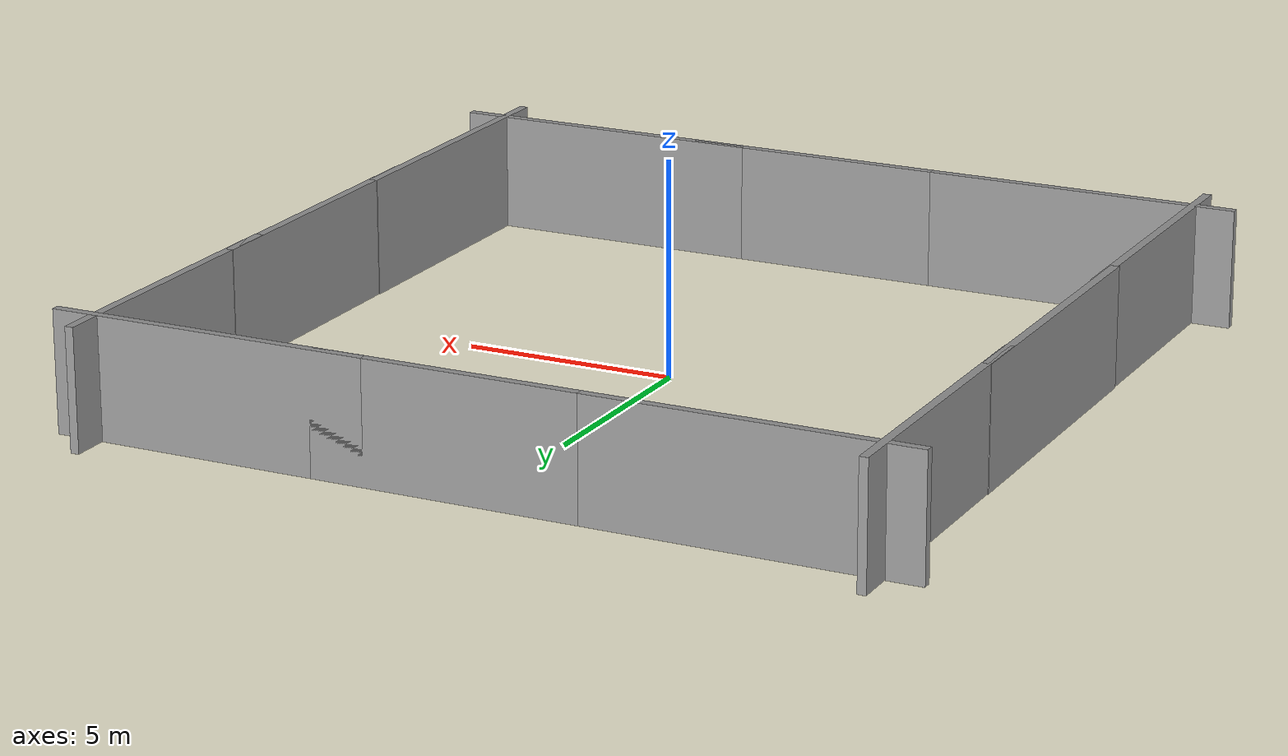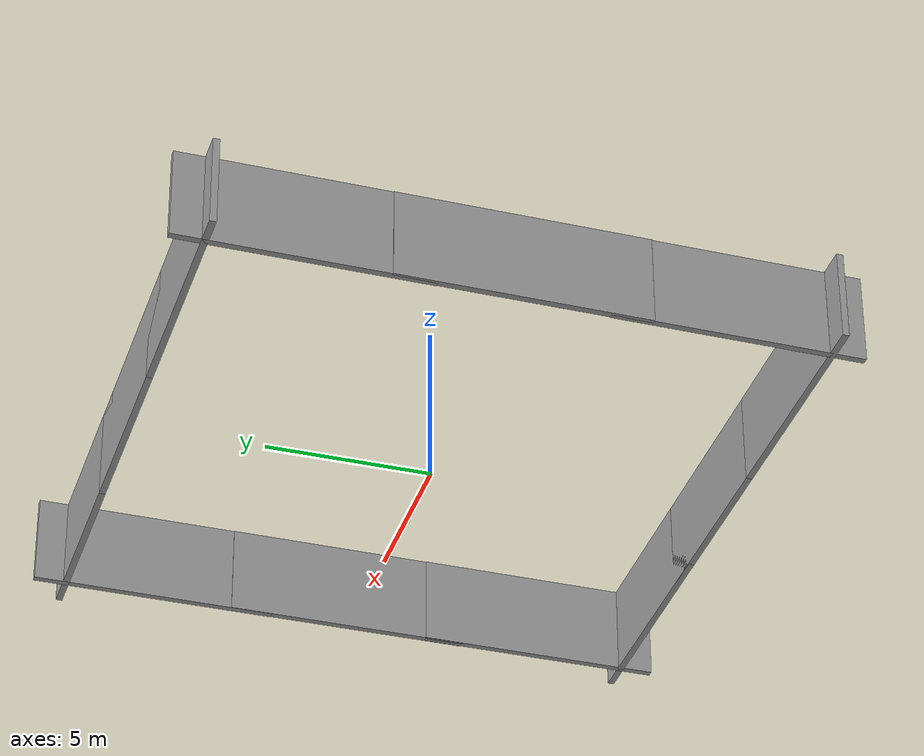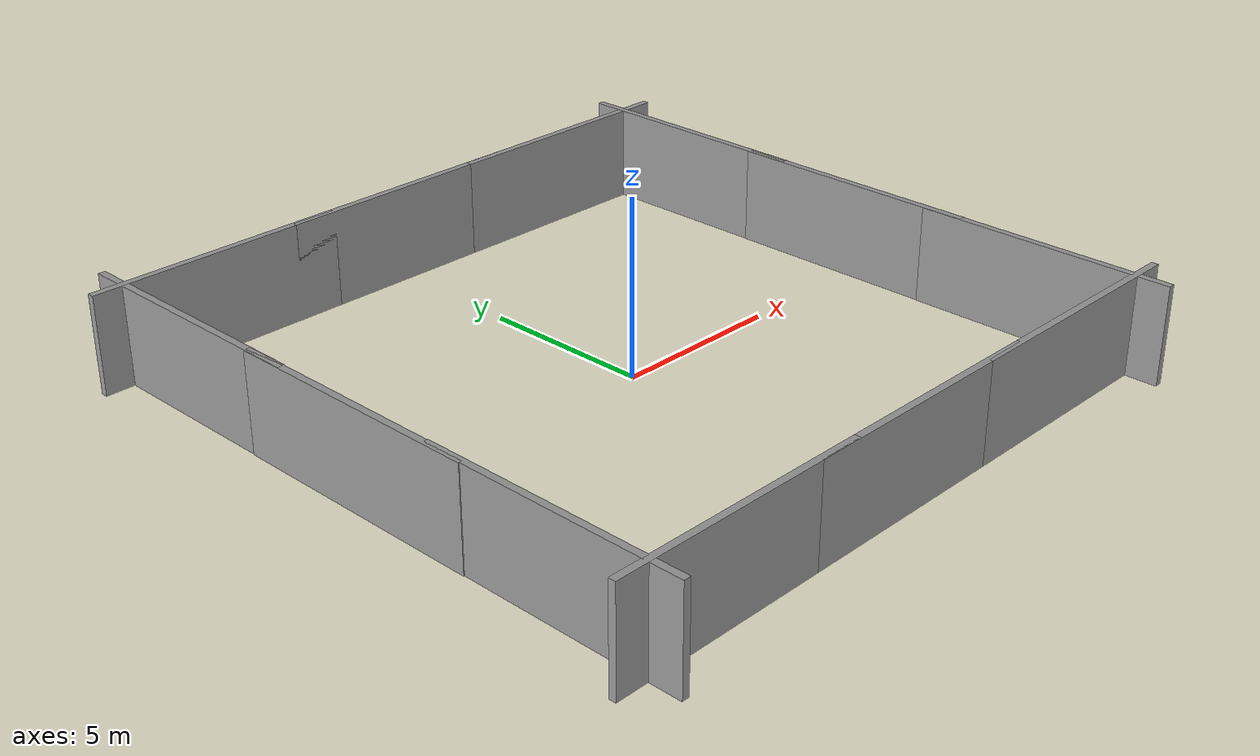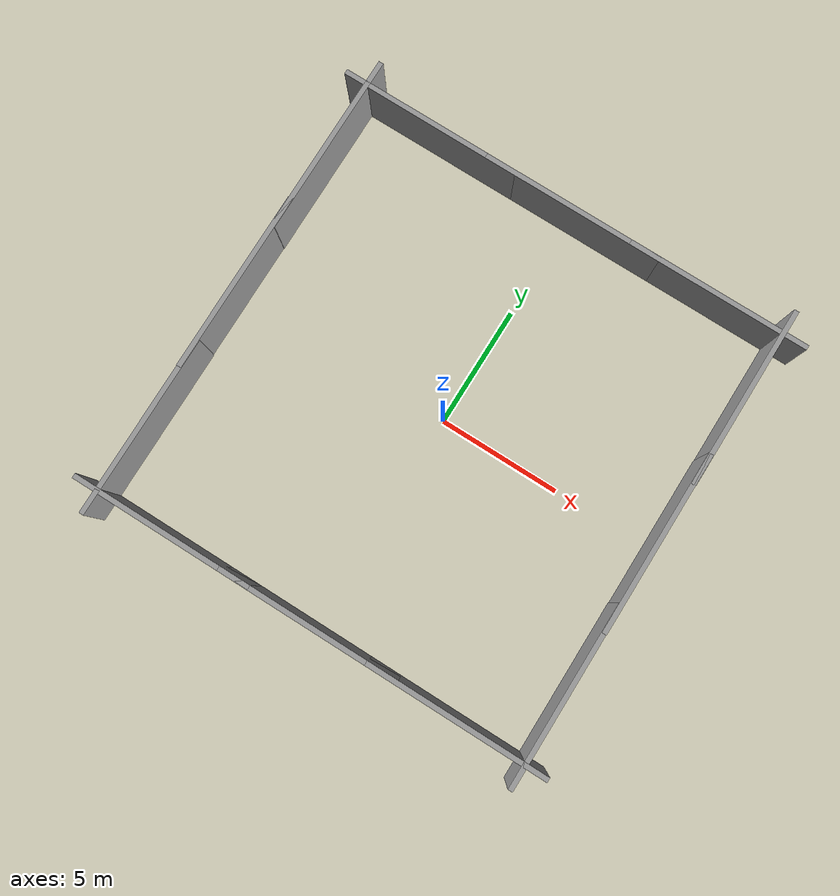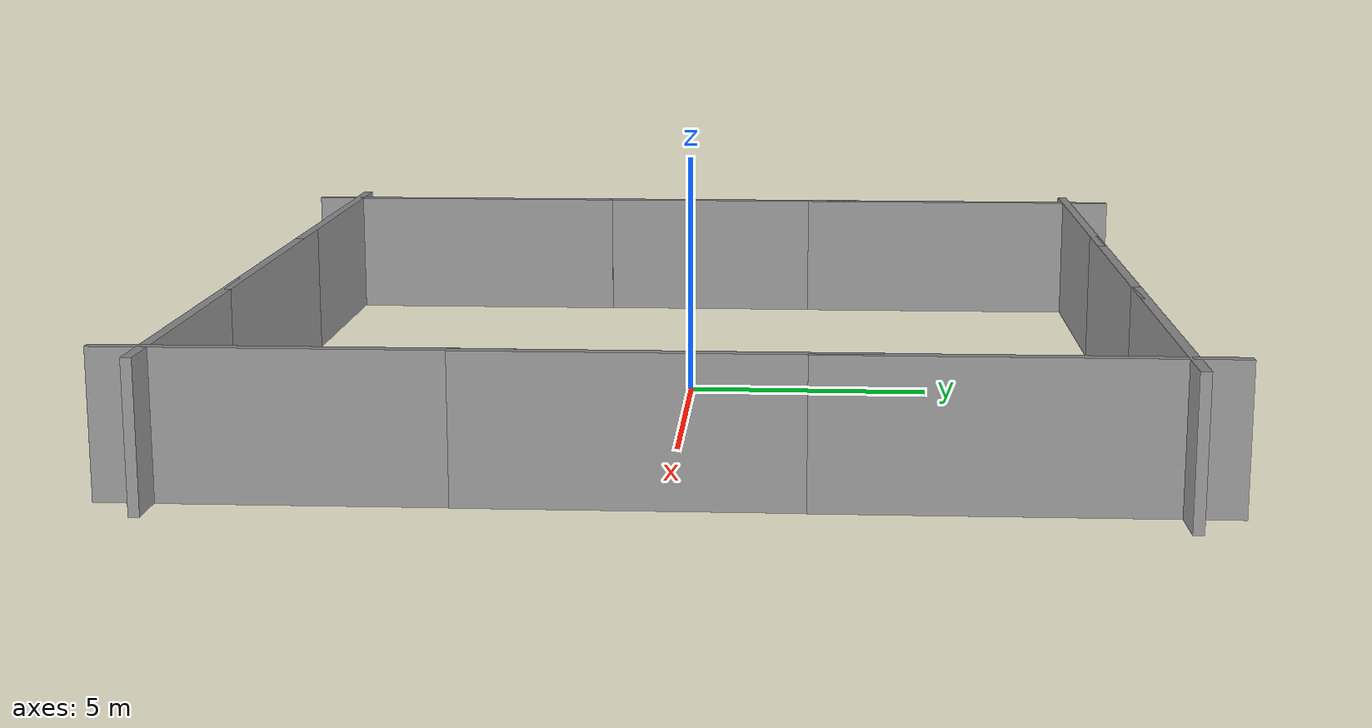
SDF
<?xml version='1.0'?>
<sdf version='1.6'>
  <model name='stonewall'>
    <model name='grey_wall'>
      <static>1</static>
      <link name='link'>
        <pose frame=''>0 0 1.4 0 -0 0</pose>
        <collision name='collision'>
          <geometry>
            <box>
              <size>7.5 0.2 2.8</size>
            </box>
          </geometry>
        </collision>
        <visual name='visual'>
          <cast_shadows>0</cast_shadows>
          <geometry>
            <box>
              <size>7.5 0.2 2.8</size>
            </box>
          </geometry>
          <material>
            <script>
              <uri>model://grey_wall/materials/scripts</uri>
              <uri>model://grey_wall/materials/textures</uri>
              <name>vrc/grey_wall</name>
            </script>
          </material>
        </visual>
      </link>
      <pose frame=''>-6.21549 -9.00567 0 0 -0 0</pose>
    </model>
    <model name='grey_wall_0'>
      <static>1</static>
      <link name='link'>
        <pose frame=''>0 0 1.4 0 -0 0</pose>
        <collision name='collision'>
          <geometry>
            <box>
              <size>7.5 0.2 2.8</size>
            </box>
          </geometry>
        </collision>
        <visual name='visual'>
          <cast_shadows>0</cast_shadows>
          <geometry>
            <box>
              <size>7.5 0.2 2.8</size>
            </box>
          </geometry>
          <material>
            <script>
              <uri>model://grey_wall/materials/scripts</uri>
              <uri>model://grey_wall/materials/textures</uri>
              <name>vrc/grey_wall</name>
            </script>
          </material>
        </visual>
      </link>
      <pose frame=''>-8.96556 -6.24851 0 0 -0 1.57372</pose>
    </model>
    <model name='grey_wall_0_clone'>
      <static>1</static>
      <link name='link'>
        <pose frame=''>0 0 1.4 0 -0 0</pose>
        <collision name='collision'>
          <geometry>
            <box>
              <size>7.5 0.2 2.8</size>
            </box>
          </geometry>
        </collision>
        <visual name='visual'>
          <cast_shadows>0</cast_shadows>
          <geometry>
            <box>
              <size>7.5 0.2 2.8</size>
            </box>
          </geometry>
          <material>
            <script>
              <uri>model://grey_wall/materials/scripts</uri>
              <uri>model://grey_wall/materials/textures</uri>
              <name>vrc/grey_wall</name>
            </script>
          </material>
        </visual>
      </link>
      <pose frame=''>-9.00936 6.24215 0 0 -0 1.57372</pose>
    </model>
    <model name='grey_wall_0_clone_0'>
      <static>1</static>
      <link name='link'>
        <pose frame=''>0 0 1.4 0 -0 0</pose>
        <collision name='collision'>
          <geometry>
            <box>
              <size>7.5 0.2 2.8</size>
            </box>
          </geometry>
        </collision>
        <visual name='visual'>
          <cast_shadows>0</cast_shadows>
          <geometry>
            <box>
              <size>7.5 0.2 2.8</size>
            </box>
          </geometry>
          <material>
            <script>
              <uri>model://grey_wall/materials/scripts</uri>
              <uri>model://grey_wall/materials/textures</uri>
              <name>vrc/grey_wall</name>
            </script>
          </material>
        </visual>
      </link>
      <pose frame=''>-9.01007 0.032512 0 0 -0 1.57372</pose>
    </model>
    <model name='grey_wall_0_clone_1'>
      <static>1</static>
      <link name='link'>
        <pose frame=''>0 0 1.4 0 -0 0</pose>
        <collision name='collision'>
          <geometry>
            <box>
              <size>7.5 0.2 2.8</size>
            </box>
          </geometry>
        </collision>
        <visual name='visual'>
          <cast_shadows>0</cast_shadows>
          <geometry>
            <box>
              <size>7.5 0.2 2.8</size>
            </box>
          </geometry>
          <material>
            <script>
              <uri>model://grey_wall/materials/scripts</uri>
              <uri>model://grey_wall/materials/textures</uri>
              <name>vrc/grey_wall</name>
            </script>
          </material>
        </visual>
      </link>
      <pose frame=''>8.99078 -6.26114 0 0 -0 1.57372</pose>
    </model>
    <model name='grey_wall_0_clone_1_clone'>
      <static>1</static>
      <link name='link'>
        <pose frame=''>0 0 1.4 0 -0 0</pose>
        <collision name='collision'>
          <geometry>
            <box>
              <size>7.5 0.2 2.8</size>
            </box>
          </geometry>
        </collision>
        <visual name='visual'>
          <cast_shadows>0</cast_shadows>
          <geometry>
            <box>
              <size>7.5 0.2 2.8</size>
            </box>
          </geometry>
          <material>
            <script>
              <uri>model://grey_wall/materials/scripts</uri>
              <uri>model://grey_wall/materials/textures</uri>
              <name>vrc/grey_wall</name>
            </script>
          </material>
        </visual>
      </link>
      <pose frame=''>8.98933 6.23505 0 0 -0 1.57372</pose>
    </model>
    <model name='grey_wall_0_clone_1_clone_0'>
      <static>1</static>
      <link name='link'>
        <pose frame=''>0 0 1.4 0 -0 0</pose>
        <collision name='collision'>
          <geometry>
            <box>
              <size>7.5 0.2 2.8</size>
            </box>
          </geometry>
        </collision>
        <visual name='visual'>
          <cast_shadows>0</cast_shadows>
          <geometry>
            <box>
              <size>7.5 0.2 2.8</size>
            </box>
          </geometry>
          <material>
            <script>
              <uri>model://grey_wall/materials/scripts</uri>
              <uri>model://grey_wall/materials/textures</uri>
              <name>vrc/grey_wall</name>
            </script>
          </material>
        </visual>
      </link>
      <pose frame=''>8.9913 0.033922 0 0 -0 1.57372</pose>
    </model>
    <model name='grey_wall_clone'>
      <static>1</static>
      <link name='link'>
        <pose frame=''>0 0 1.4 0 -0 0</pose>
        <collision name='collision'>
          <geometry>
            <box>
              <size>7.5 0.2 2.8</size>
            </box>
          </geometry>
        </collision>
        <visual name='visual'>
          <cast_shadows>0</cast_shadows>
          <geometry>
            <box>
              <size>7.5 0.2 2.8</size>
            </box>
          </geometry>
          <material>
            <script>
              <uri>model://grey_wall/materials/scripts</uri>
              <uri>model://grey_wall/materials/textures</uri>
              <name>vrc/grey_wall</name>
            </script>
          </material>
        </visual>
      </link>
      <pose frame=''>-0.009962 -9.00567 0 0 -0 0</pose>
    </model>
    <model name='grey_wall_clone_0'>
      <static>1</static>
      <link name='link'>
        <pose frame=''>0 0 1.4 0 -0 0</pose>
        <collision name='collision'>
          <geometry>
            <box>
              <size>7.5 0.2 2.8</size>
            </box>
          </geometry>
        </collision>
        <visual name='visual'>
          <cast_shadows>0</cast_shadows>
          <geometry>
            <box>
              <size>7.5 0.2 2.8</size>
            </box>
          </geometry>
          <material>
            <script>
              <uri>model://grey_wall/materials/scripts</uri>
              <uri>model://grey_wall/materials/textures</uri>
              <name>vrc/grey_wall</name>
            </script>
          </material>
        </visual>
      </link>
      <pose frame=''>6.19421 -9.00567 0 0 -0 0</pose>
    </model>
    <model name='grey_wall_clone_1'>
      <static>1</static>
      <link name='link'>
        <pose frame=''>0 0 1.4 0 -0 0</pose>
        <collision name='collision'>
          <geometry>
            <box>
              <size>7.5 0.2 2.8</size>
            </box>
          </geometry>
        </collision>
        <visual name='visual'>
          <cast_shadows>0</cast_shadows>
          <geometry>
            <box>
              <size>7.5 0.2 2.8</size>
            </box>
          </geometry>
          <material>
            <script>
              <uri>model://grey_wall/materials/scripts</uri>
              <uri>model://grey_wall/materials/textures</uri>
              <name>vrc/grey_wall</name>
            </script>
          </material>
        </visual>
      </link>
      <pose frame=''>-6.20636 8.99433 0 0 -0 0</pose>
    </model>
    <model name='grey_wall_clone_1_clone'>
      <static>1</static>
      <link name='link'>
        <pose frame=''>0 0 1.4 0 -0 0</pose>
        <collision name='collision'>
          <geometry>
            <box>
              <size>7.5 0.2 2.8</size>
            </box>
          </geometry>
        </collision>
        <visual name='visual'>
          <cast_shadows>0</cast_shadows>
          <geometry>
            <box>
              <size>7.5 0.2 2.8</size>
            </box>
          </geometry>
          <material>
            <script>
              <uri>model://grey_wall/materials/scripts</uri>
              <uri>model://grey_wall/materials/textures</uri>
              <name>vrc/grey_wall</name>
            </script>
          </material>
        </visual>
      </link>
      <pose frame=''>6.24842 8.99433 0 0 -0 0</pose>
    </model>
    <model name='grey_wall_clone_1_clone_0'>
      <static>1</static>
      <link name='link'>
        <pose frame=''>0 0 1.4 0 -0 0</pose>
        <collision name='collision'>
          <geometry>
            <box>
              <size>7.5 0.2 2.8</size>
            </box>
          </geometry>
        </collision>
        <visual name='visual'>
          <cast_shadows>0</cast_shadows>
          <geometry>
            <box>
              <size>7.5 0.2 2.8</size>
            </box>
          </geometry>
          <material>
            <script>
              <uri>model://grey_wall/materials/scripts</uri>
              <uri>model://grey_wall/materials/textures</uri>
              <name>vrc/grey_wall</name>
            </script>
          </material>
        </visual>
      </link>
      <pose frame=''>0.002746 8.99433 0 0 -0 0</pose>
    </model>
    <static>0</static>
    <allow_auto_disable>1</allow_auto_disable>
  </model>
</sdf>
